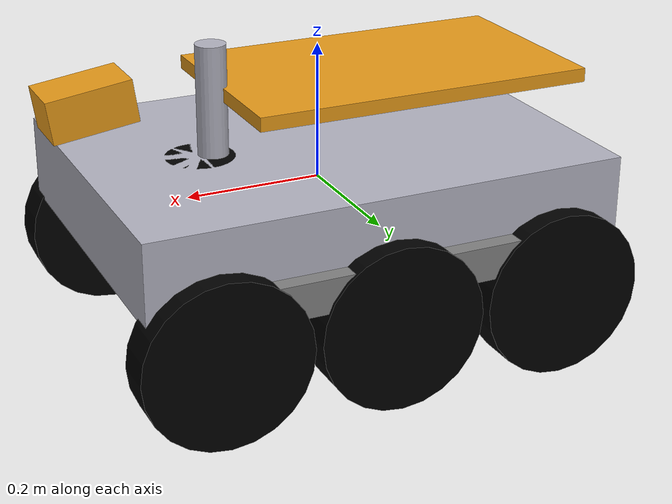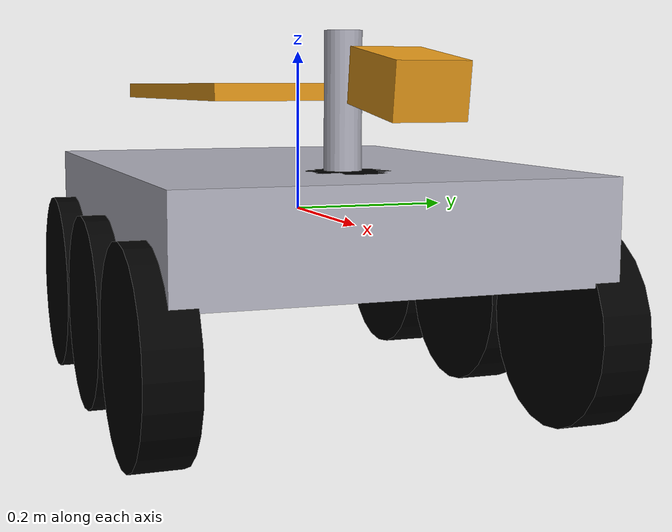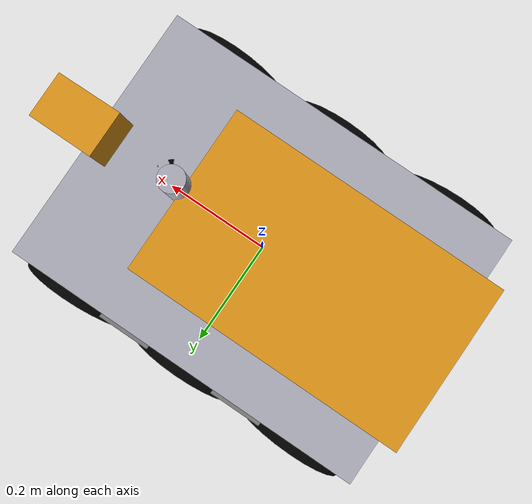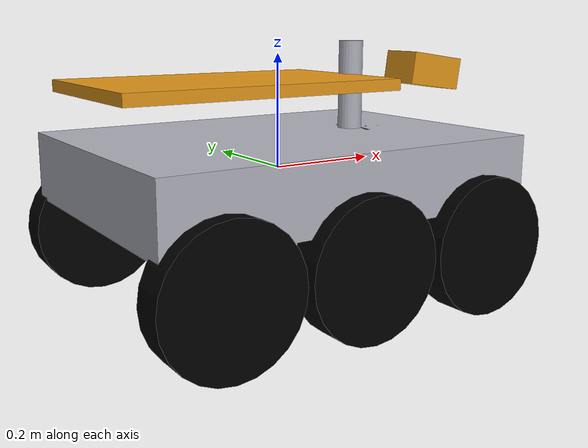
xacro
<?xml version="1.0"?>
<robot name="rover" xmlns:xacro="http://www.ros.org/wiki/xacro">

  <!-- ================= MATERIALS ================= -->
  <material name="light_gray">
    <color rgba="0.7 0.7 0.75 1"/>
  </material>

  <material name="accent">
    <color rgba="0.9 0.6 0.1 1"/>
  </material>

  <material name="gray">
    <color rgba="0.5 0.5 0.5 1"/>
  </material>

  <material name="black">
    <color rgba="0 0 0 1"/>
  </material>

  <!-- ================= BASE ================= -->
  <link name="base_link">
    <visual>
      <geometry>
        <box size="0.7 0.5 0.12"/>
      </geometry>
      <material name="light_gray"/>
    </visual>

    <collision>
      <geometry>
        <box size="0.7 0.5 0.12"/>
      </geometry>
    </collision>

    <inertial>
      <mass value="10.0"/>
      <inertia ixx="1" iyy="1" izz="1" ixy="0" ixz="0" iyz="0"/>
    </inertial>
  </link>

  <!-- ================= MAST ================= -->
  <link name="mast_link">
    <visual>
      <geometry>
        <cylinder radius="0.022" length="0.16"/>
      </geometry>
      <material name="light_gray"/>
    </visual>
  </link>

  <joint name="mast_joint" type="fixed">
    <parent link="base_link"/>
    <child link="mast_link"/>
    <origin xyz="0.16 0 0.14"/>
  </joint>

  <!-- ================= CAMERA ================= -->
  <link name="camera_link">
    <visual>
      <geometry>
        <box size="0.12 0.08 0.06"/>
      </geometry>
      <material name="accent"/>
    </visual>

    <collision>
      <geometry>
        <box size="0.12 0.08 0.06"/>
      </geometry>
    </collision>

    <inertial>
      <mass value="0.5"/>
      <inertia ixx="0.01" iyy="0.01" izz="0.01" ixy="0" ixz="0" iyz="0"/>
    </inertial>
  </link>

  <joint name="camera_joint" type="fixed">
    <parent link="mast_link"/>
    <child link="camera_link"/>
    <origin xyz="0.18 0 0.02" rpy="0 0.14 0"/>
  </joint>

  <!-- ================= LIDAR ================= -->
  <link name="lidar_link">
    <visual>
      <geometry>
        <cylinder radius="0.05" length="0.05"/>
      </geometry>
      <material name="black"/>
    </visual>

    <collision>
      <geometry>
        <cylinder radius="0.05" length="0.05"/>
      </geometry>
    </collision>

    <inertial>
      <mass value="0.5"/>
      <inertia ixx="0.01" iyy="0.01" izz="0.01" ixy="0" ixz="0" iyz="0"/>
    </inertial>
  </link>

  <joint name="lidar_joint" type="fixed">
    <parent link="base_link"/>
    <child link="lidar_link"/>
    <origin xyz="0.18 0 0.035"/>
  </joint>

  <!-- ================= ARM ================= -->
  <link name="left_arm">
    <visual>
      <geometry>
        <box size="0.4 0.05 0.05"/>
      </geometry>
      <material name="gray"/>
    </visual>
  </link>

  <joint name="left_arm_joint" type="fixed">
    <parent link="base_link"/>
    <child link="left_arm"/>
    <origin xyz="0 0.25 -0.05"/>
  </joint>

  <!-- ================= SOLAR PANEL ================= -->
  <link name="solar_panel">
    <visual>
      <geometry>
        <box size="0.5 0.3 0.02"/>
      </geometry>
      <material name="accent"/>
    </visual>
  </link>

  <joint name="solar_joint" type="fixed">
    <parent link="base_link"/>
    <child link="solar_panel"/>
    <origin xyz="-0.1 0 0.15"/>
  </joint>

  <!-- ================= WHEELS ================= -->
  <xacro:macro name="wheel" params="name x y">
    <link name="${name}">
      <visual>
        <origin rpy="1.5707 0 0"/>
        <geometry>
          <cylinder radius="0.12" length="0.06"/>
        </geometry>
        <material name="black"/>
      </visual>

      <collision>
        <origin rpy="1.5707 0 0"/>
        <geometry>
  	<cylinder radius="0.12" length="0.06"/>
        </geometry>
      </collision>

      <inertial>
        <mass value="1.0"/>
        <inertia ixx="0.1" iyy="0.1" izz="0.1" ixy="0" ixz="0" iyz="0"/>
      </inertial>
    </link>

    <joint name="${name}_joint" type="continuous">
      <parent link="base_link"/>
      <child link="${name}"/>
      <origin xyz="${x} ${y} -0.12"/>
      <axis xyz="0 1 0"/>
    </joint>
  </xacro:macro>

  <!-- LEFT WHEELS -->
  <xacro:wheel name="front_left_wheel" x="0.25" y="0.25"/>
  <xacro:wheel name="mid_left_wheel" x="0" y="0.25"/>
  <xacro:wheel name="rear_left_wheel" x="-0.25" y="0.25"/>

  <!-- RIGHT WHEELS -->
  <xacro:wheel name="front_right_wheel" x="0.25" y="-0.25"/>
  <xacro:wheel name="mid_right_wheel" x="0" y="-0.25"/>
  <xacro:wheel name="rear_right_wheel" x="-0.25" y="-0.25"/>

  <!-- INCLUDE GAZEBO FILE -->
  <xacro:include filename="rover.gazebo"/>

</robot>
